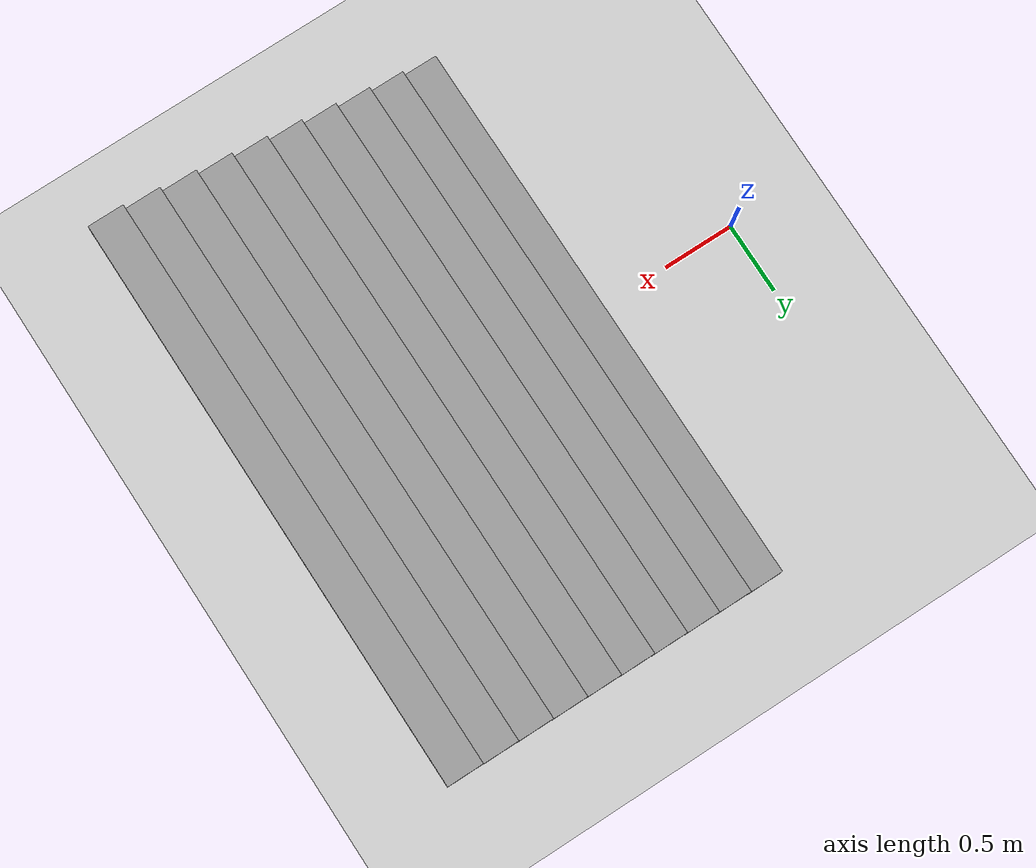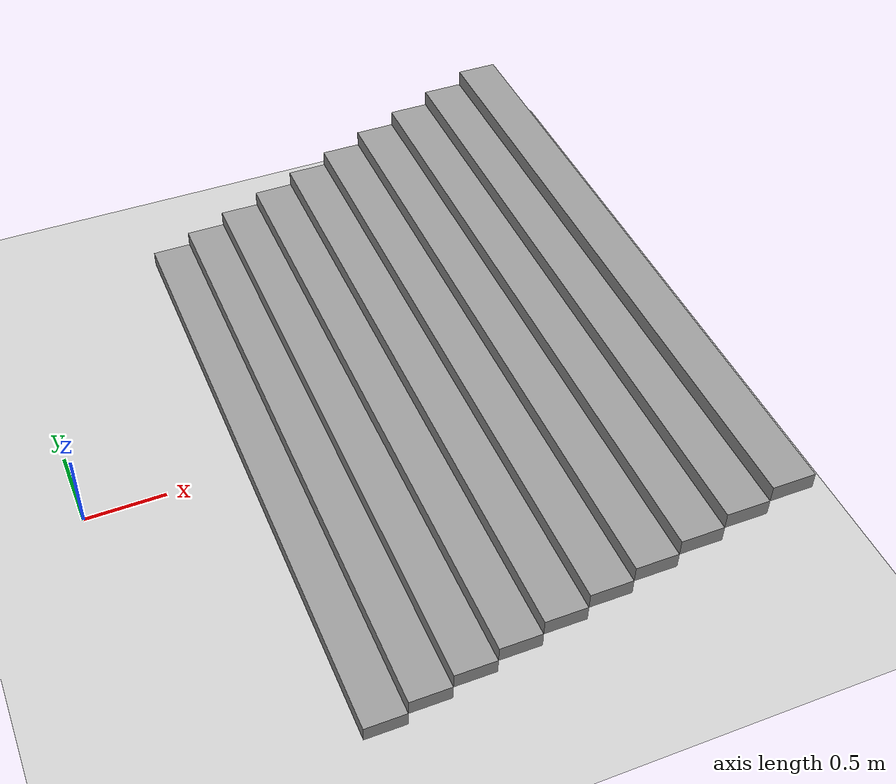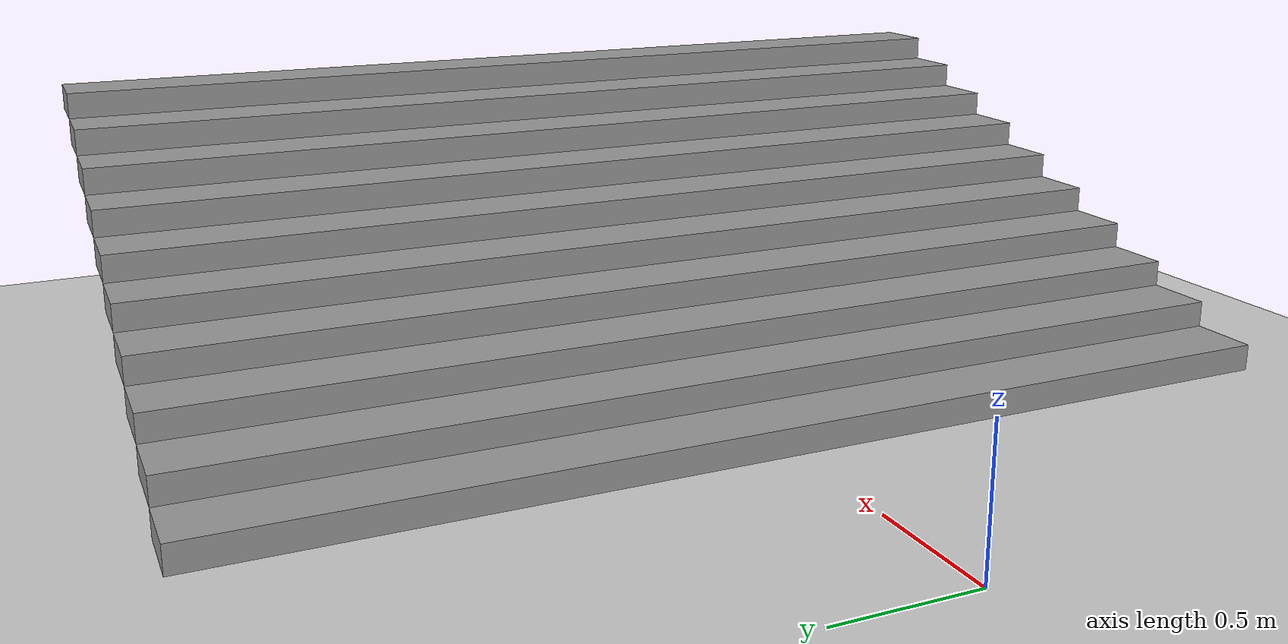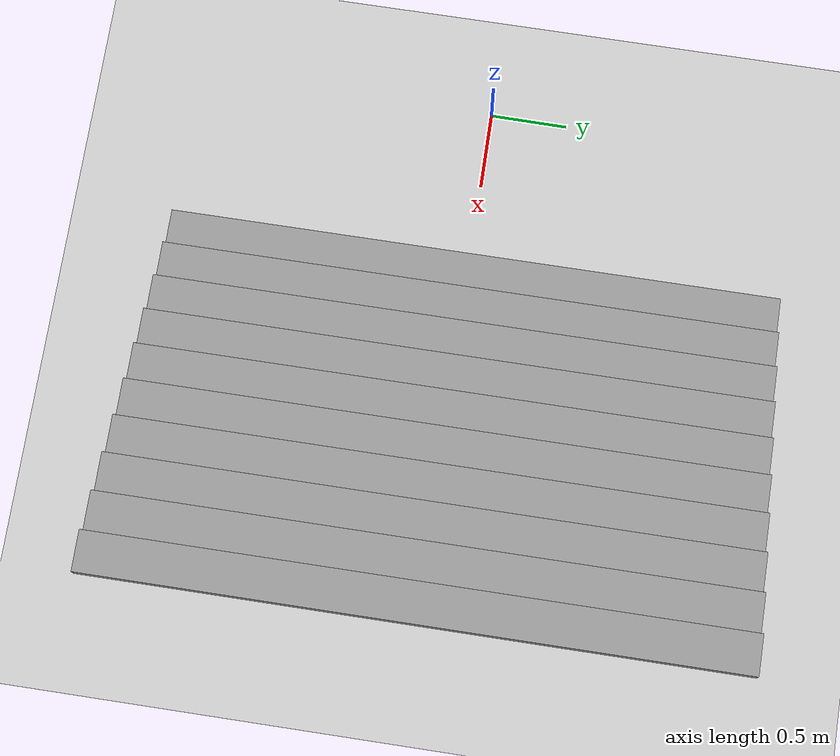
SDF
<sdf version="1.7">
 <world name="default">
  <light name="sun" type="directional">
   <pose>0 0 10 0 -0 0</pose>
   <diffuse>0.8 0.8 0.8 1</diffuse>
   <specular>0.2 0.2 0.2 1</specular>
   <attenuation>
    <range>1000</range>
    <constant>0.9</constant>
    <linear>0.01</linear>
    <quadratic>0.001</quadratic>
   </attenuation>
   <direction>-0.5 0.1 -0.9</direction>
   <spot><inner_angle>0</inner_angle><outer_angle>0</outer_angle><falloff>0</falloff></spot>
  </light>
  <model name="ground_plane">
   <static>1</static>
   <link name="link">
    <collision name="collision">
     <geometry><plane><normal>0 0 1</normal><size>100 100</size></plane></geometry>
     <surface>
      <contact><collide_bitmask>65535</collide_bitmask></contact>
      <friction><ode><mu>100</mu><mu2>50</mu2></ode></friction>
     </surface>
    </collision>
    <visual name="visual">
     <cast_shadows>0</cast_shadows>
     <geometry><plane><normal>0 0 1</normal><size>100 100</size></plane></geometry>
     <material>
      <script><uri>file://media/materials/scripts/gazebo.material</uri><name>Gazebo/Grey</name></script>
     </material>
    </visual>
   </link>
  </model>
  <gravity>0 0 -9.8</gravity>
  <magnetic_field>6e-06 2.3e-05 -4.2e-05</magnetic_field>
  <atmosphere type="adiabatic"/>
  <physics type="ode">
   <max_step_size>0.001</max_step_size>
   <real_time_factor>1</real_time_factor>
   <real_time_update_rate>1000</real_time_update_rate>
  </physics>
  <scene><ambient>0.4 0.4 0.4 1</ambient><background>0.7 0.7 0.7 1</background><shadows>1</shadows></scene>
  <spherical_coordinates>
   <surface_model>EARTH_WGS84</surface_model>
   <latitude_deg>0</latitude_deg>
   <longitude_deg>0</longitude_deg>
   <elevation>0</elevation>
   <heading_deg>0</heading_deg>
  </spherical_coordinates>
  <model name="stair2">
   <pose>1.745 0.03 0 0 -0 0</pose>
   <link name="Stairs_1">
    <visual name="Stairs_1_Visual_0">
     <pose>-0.63 -0 0.05 0 -0 1.5708</pose>
     <geometry><box><size>4 0.25 0.1</size></box></geometry>
     <material>
      <script><uri>file://media/materials/scripts/gazebo.material</uri><name>Gazebo/Grey</name></script>
      <ambient>1 1 1 1</ambient>
     </material>
     <meta><layer>0</layer></meta>
    </visual>
    <collision name="Stairs_1_Collision_0">
     <geometry><box><size>4 0.25 0.1</size></box></geometry>
     <pose>-0.63 -0 0.05 0 -0 1.5708</pose>
    </collision>
    <visual name="Stairs_1_Visual_1">
     <pose>-0.38 -0 0.15 0 -0 1.5708</pose>
     <geometry><box><size>4 0.25 0.1</size></box></geometry>
     <material>
      <script><uri>file://media/materials/scripts/gazebo.material</uri><name>Gazebo/Grey</name></script>
      <ambient>1 1 1 1</ambient>
     </material>
     <meta><layer>0</layer></meta>
    </visual>
    <collision name="Stairs_1_Collision_1">
     <geometry><box><size>4 0.25 0.1</size></box></geometry>
     <pose>-0.38 -0 0.15 0 -0 1.5708</pose>
    </collision>
    <visual name="Stairs_1_Visual_2">
     <pose>-0.13 -0 0.25 0 -0 1.5708</pose>
     <geometry><box><size>4 0.25 0.1</size></box></geometry>
     <material>
      <script><uri>file://media/materials/scripts/gazebo.material</uri><name>Gazebo/Grey</name></script>
      <ambient>1 1 1 1</ambient>
     </material>
     <meta><layer>0</layer></meta>
    </visual>
    <collision name="Stairs_1_Collision_2">
     <geometry><box><size>4 0.25 0.1</size></box></geometry>
     <pose>-0.13 -0 0.25 0 -0 1.5708</pose>
    </collision>
    <visual name="Stairs_1_Visual_3">
     <pose>0.12 -0 0.35 0 -0 1.5708</pose>
     <geometry><box><size>4 0.25 0.1</size></box></geometry>
     <material>
      <script><uri>file://media/materials/scripts/gazebo.material</uri><name>Gazebo/Grey</name></script>
      <ambient>1 1 1 1</ambient>
     </material>
     <meta><layer>0</layer></meta>
    </visual>
    <collision name="Stairs_1_Collision_3">
     <geometry><box><size>4 0.25 0.1</size></box></geometry>
     <pose>0.12 -0 0.35 0 -0 1.5708</pose>
    </collision>
    <visual name="Stairs_1_Visual_4">
     <pose>0.37 -0 0.45 0 -0 1.5708</pose>
     <geometry><box><size>4 0.25 0.1</size></box></geometry>
     <material>
      <script><uri>file://media/materials/scripts/gazebo.material</uri><name>Gazebo/Grey</name></script>
      <ambient>1 1 1 1</ambient>
     </material>
     <meta><layer>0</layer></meta>
    </visual>
    <collision name="Stairs_1_Collision_4">
     <geometry><box><size>4 0.25 0.1</size></box></geometry>
     <pose>0.37 -0 0.45 0 -0 1.5708</pose>
    </collision>
    <visual name="Stairs_1_Visual_5">
     <pose>0.62 -0 0.55 0 -0 1.5708</pose>
     <geometry><box><size>4 0.25 0.1</size></box></geometry>
     <material>
      <script><uri>file://media/materials/scripts/gazebo.material</uri><name>Gazebo/Grey</name></script>
      <ambient>1 1 1 1</ambient>
     </material>
     <meta><layer>0</layer></meta>
    </visual>
    <collision name="Stairs_1_Collision_5">
     <geometry><box><size>4 0.25 0.1</size></box></geometry>
     <pose>0.62 -0 0.55 0 -0 1.5708</pose>
    </collision>
    <visual name="Stairs_1_Visual_6">
     <pose>0.87 0 0.65 0 -0 1.5708</pose>
     <geometry><box><size>4 0.25 0.1</size></box></geometry>
     <material>
      <script><uri>file://media/materials/scripts/gazebo.material</uri><name>Gazebo/Grey</name></script>
      <ambient>1 1 1 1</ambient>
     </material>
     <meta><layer>0</layer></meta>
    </visual>
    <collision name="Stairs_1_Collision_6">
     <geometry><box><size>4 0.25 0.1</size></box></geometry>
     <pose>0.87 0 0.65 0 -0 1.5708</pose>
    </collision>
    <visual name="Stairs_1_Visual_7">
     <pose>1.12 0 0.75 0 -0 1.5708</pose>
     <geometry><box><size>4 0.25 0.1</size></box></geometry>
     <material>
      <script><uri>file://media/materials/scripts/gazebo.material</uri><name>Gazebo/Grey</name></script>
      <ambient>1 1 1 1</ambient>
     </material>
     <meta><layer>0</layer></meta>
    </visual>
    <collision name="Stairs_1_Collision_7">
     <geometry><box><size>4 0.25 0.1</size></box></geometry>
     <pose>1.12 0 0.75 0 -0 1.5708</pose>
    </collision>
    <visual name="Stairs_1_Visual_8">
     <pose>1.37 0 0.85 0 -0 1.5708</pose>
     <geometry><box><size>4 0.25 0.1</size></box></geometry>
     <material>
      <script><uri>file://media/materials/scripts/gazebo.material</uri><name>Gazebo/Grey</name></script>
      <ambient>1 1 1 1</ambient>
     </material>
     <meta><layer>0</layer></meta>
    </visual>
    <collision name="Stairs_1_Collision_8">
     <geometry><box><size>4 0.25 0.1</size></box></geometry>
     <pose>1.37 0 0.85 0 -0 1.5708</pose>
    </collision>
    <visual name="Stairs_1_Visual_9">
     <pose>1.62 0 0.95 0 -0 1.5708</pose>
     <geometry><box><size>4 0.25 0.1</size></box></geometry>
     <material>
      <script><uri>file://media/materials/scripts/gazebo.material</uri><name>Gazebo/Grey</name></script>
      <ambient>1 1 1 1</ambient>
     </material>
     <meta><layer>0</layer></meta>
    </visual>
    <collision name="Stairs_1_Collision_9">
     <geometry><box><size>4 0.25 0.1</size></box></geometry>
     <pose>1.62 0 0.95 0 -0 1.5708</pose>
    </collision>
   </link>
   <static>1</static>
  </model>
 </world>
</sdf>
